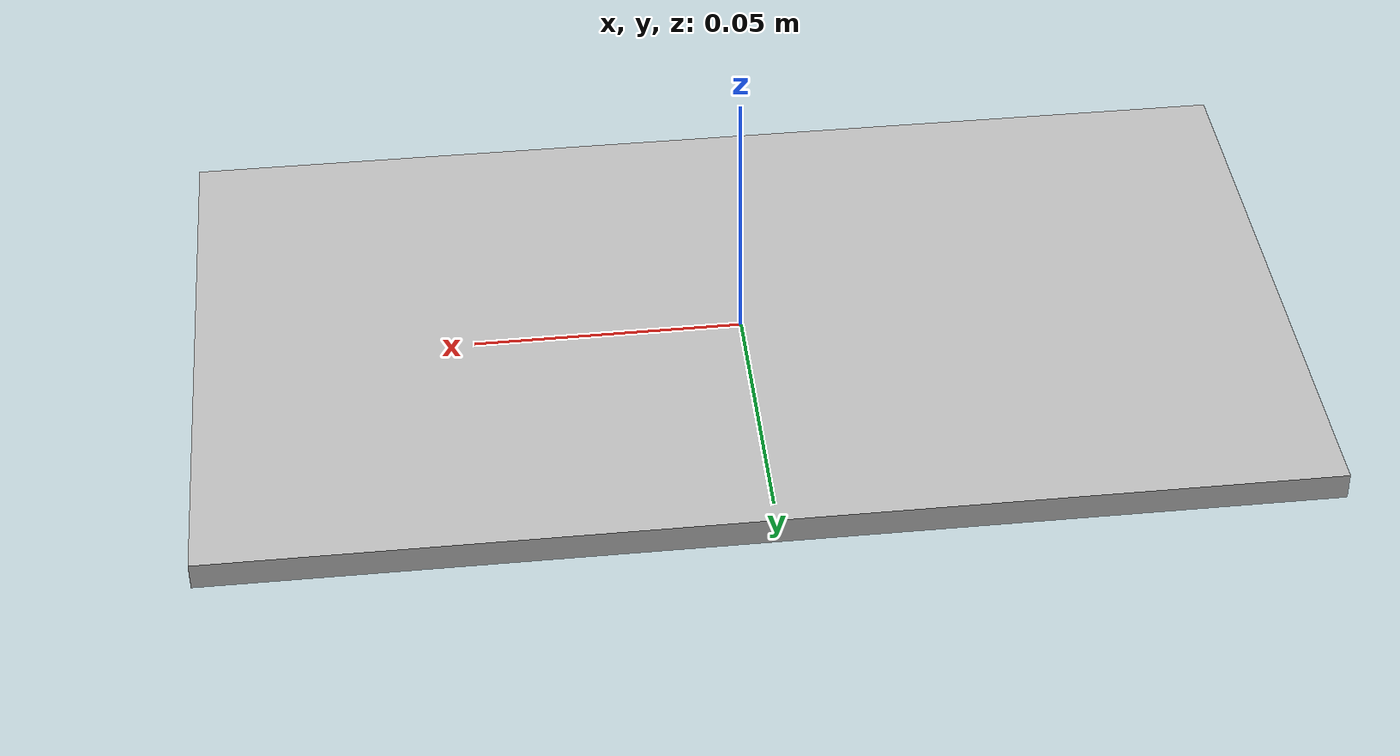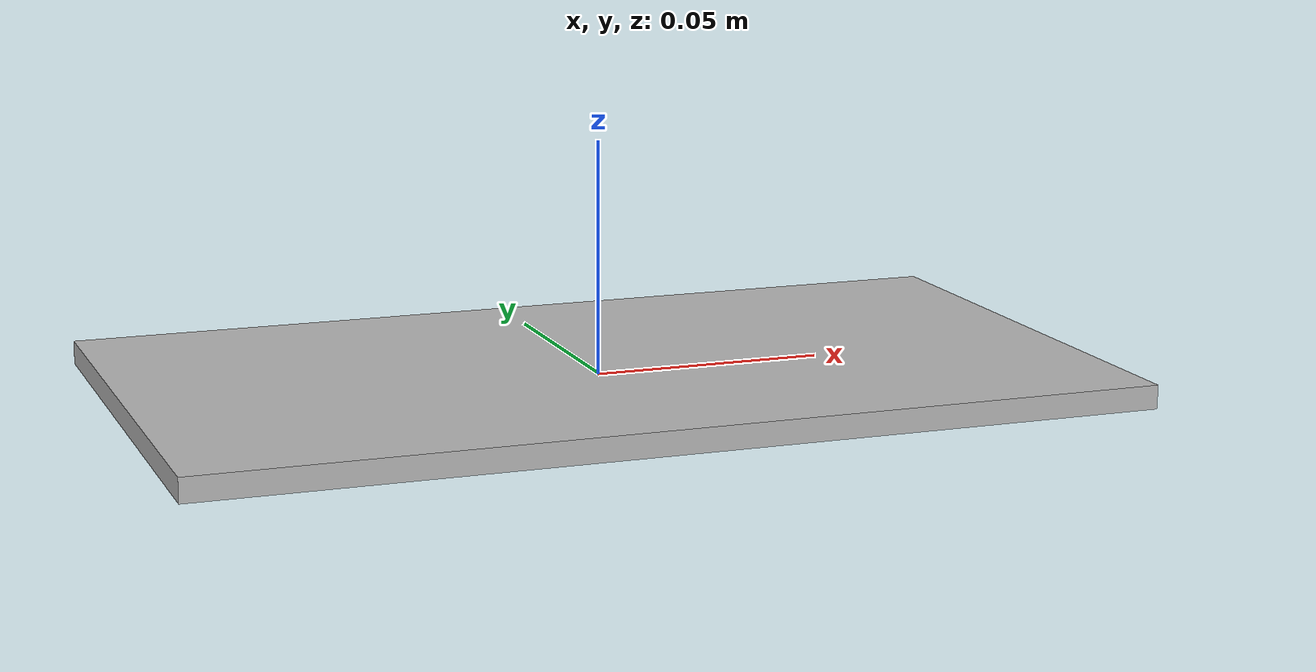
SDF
<?xml version="1.0"?>
<sdf version="1.4">
  <world name="default">

    <model name="plate">
      <link name="mesh_link">
        <pose>0 0 0 0 0 0</pose>

        <collision name="box_collision">
          <geometry>
	    <mesh>
	      <uri>model://gazebo_ray_trace/sdf/real_plate.stl</uri>
	      <scale>0.0254 0.0254 0.0254</scale>
	    </mesh>
          </geometry>

        </collision>

        <visual name="visual">
          <geometry>
	    <mesh>
	      <uri>model://gazebo_ray_trace/sdf/real_plate.stl</uri>
	      <scale>0.0254 0.0254 0.0254</scale>
	    </mesh>
          </geometry>
        </visual>
      </link>
    </model>
    <plugin filename="libdistance_ray_trace.so" name="ray_tracer"/>
  </world>
</sdf>
